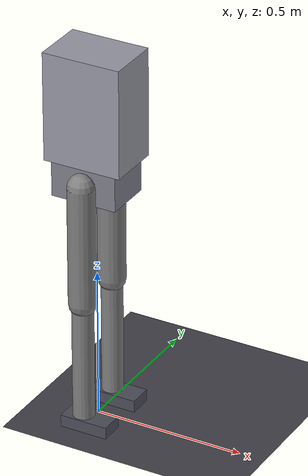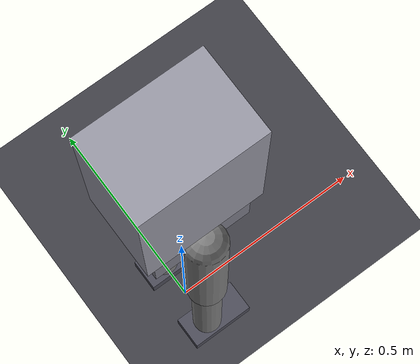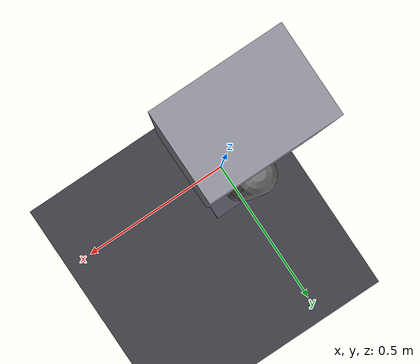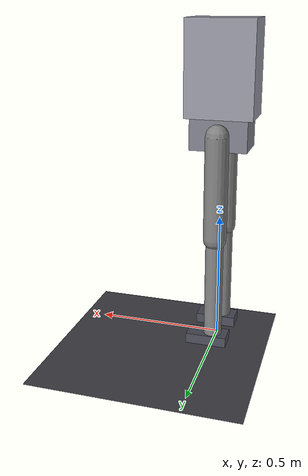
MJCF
<mujoco model="biped_balance_test">
  <compiler angle="radian" />
  <option timestep="0.002" gravity="0 0 -9.81" />

  <default>
    <joint damping="1.0" frictionloss="0.05" />
    <geom contype="1" conaffinity="1" friction="0.9 0.01 0.0001" density="1000" />
  </default>

  <worldbody>
    <light name="light_top" pos="0 0 3" dir="0 0 -1" diffuse="0.8 0.8 0.8" directional="true" />
    <light name="light_side" pos="2 -2 2" dir="-1 1 -1" diffuse="0.4 0.4 0.4" directional="true" />
    <camera name="cam_side" mode="targetbody" target="pelvis" pos="2.2 0 1.0" fovy="55" />

    <geom name="floor" type="plane" size="5 5 0.1" rgba="0.25 0.25 0.28 1" />

    <body name="pelvis" pos="0 0 0.84">
      <freejoint name="pelvis_free" />
      <geom name="torso_geom" type="box" size="0.13 0.09 0.18" pos="0 0 0.24" rgba="0.6 0.6 0.65 1" />
      <geom name="pelvis_geom" type="box" size="0.11 0.08 0.06" rgba="0.5 0.5 0.55 1" />

      <body name="left_hip" pos="0 0.09 0">
        <joint name="left_hip_pitch" type="hinge" axis="0 1 0" range="-1.396 1.745" />
        <geom name="left_thigh_geom" type="capsule" fromto="0 0 0 0 0 -0.4" size="0.045" />
        <body name="left_knee" pos="0 0 -0.4">
          <joint name="left_knee_pitch" type="hinge" axis="0 1 0" range="0 2.269" />
          <geom name="left_shank_geom" type="capsule" fromto="0 0 0 0 0 -0.4" size="0.035" />
          <body name="left_ankle" pos="0 0 -0.4">
            <joint name="left_ankle_pitch" type="hinge" axis="0 1 0" range="-0.785 0.785" />
            <geom name="left_foot_geom" type="box" size="0.08 0.04 0.02" pos="0.02 0 -0.02" rgba="0.3 0.3 0.35 1" />
          </body>
        </body>
      </body>

      <body name="right_hip" pos="0 -0.09 0">
        <joint name="right_hip_pitch" type="hinge" axis="0 1 0" range="-1.396 1.745" />
        <geom name="right_thigh_geom" type="capsule" fromto="0 0 0 0 0 -0.4" size="0.045" />
        <body name="right_knee" pos="0 0 -0.4">
          <joint name="right_knee_pitch" type="hinge" axis="0 1 0" range="0 2.269" />
          <geom name="right_shank_geom" type="capsule" fromto="0 0 0 0 0 -0.4" size="0.035" />
          <body name="right_ankle" pos="0 0 -0.4">
            <joint name="right_ankle_pitch" type="hinge" axis="0 1 0" range="-0.785 0.785" />
            <geom name="right_foot_geom" type="box" size="0.08 0.04 0.02" pos="0.02 0 -0.02" rgba="0.3 0.3 0.35 1" />
          </body>
        </body>
      </body>
    </body>
  </worldbody>

  <actuator>
    <general name="left_hip_pitch_ctrl" joint="left_hip_pitch" ctrllimited="true" ctrlrange="-80 80" />
    <general name="left_knee_pitch_ctrl" joint="left_knee_pitch" ctrllimited="true" ctrlrange="-80 80" />
    <general name="left_ankle_pitch_ctrl" joint="left_ankle_pitch" ctrllimited="true" ctrlrange="-40 40" />
    <general name="right_hip_pitch_ctrl" joint="right_hip_pitch" ctrllimited="true" ctrlrange="-80 80" />
    <general name="right_knee_pitch_ctrl" joint="right_knee_pitch" ctrllimited="true" ctrlrange="-80 80" />
    <general name="right_ankle_pitch_ctrl" joint="right_ankle_pitch" ctrllimited="true" ctrlrange="-40 40" />
  </actuator>
</mujoco>
